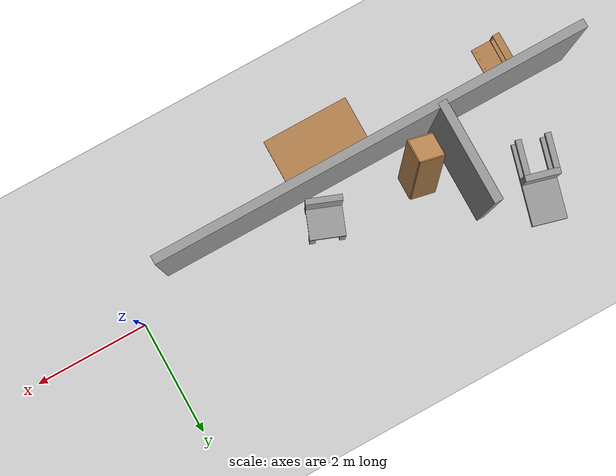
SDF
<sdf version="1.7">
 <world name="default">
  <model name="ground_plane">
   <static>1</static>
   <link name="link">
    <collision name="collision">
     <geometry><plane><normal>0 0 1</normal><size>100 100</size></plane></geometry>
     <surface>
      <contact><collide_bitmask>65535</collide_bitmask></contact>
      <friction><ode><mu>100</mu><mu2>50</mu2></ode></friction>
     </surface>
    </collision>
    <visual name="visual">
     <cast_shadows>0</cast_shadows>
     <geometry><plane><normal>0 0 1</normal><size>100 100</size></plane></geometry>
     <material>
      <script><uri>file://media/materials/scripts/gazebo.material</uri><name>Gazebo/Grey</name></script>
     </material>
    </visual>
   </link>
  </model>
  <model name="demo_clean">
   <link name="Wall_4">
    <pose>-4.47149 -0.608824 0 0 -0 3.14159</pose>
    <visual name="Wall_4_Visual">
     <pose>0 0 1.25 0 -0 0</pose>
     <geometry><box><size>7.5 0.15 2.5</size></box></geometry>
     <material>
      <script><uri>file://media/materials/scripts/gazebo.material</uri><name>Gazebo/Grey</name></script>
      <ambient>1 1 1 1</ambient>
      <shader type="pixel"/>
     </material>
     <meta><layer>0</layer></meta>
    </visual>
    <collision name="Wall_4_Collision">
     <pose>0 0 1.25 0 -0 0</pose>
     <geometry><box><size>7.5 0.15 2.5</size></box></geometry>
     <surface>
      <friction>
       <ode><mu>1</mu><mu2>1</mu2><fdir1>0 0 0</fdir1><slip1>0</slip1><slip2>0</slip2></ode>
       <torsional>
        <coefficient>1</coefficient>
        <patch_radius>0</patch_radius>
        <surface_radius>0</surface_radius>
        <use_patch_radius>1</use_patch_radius>
        <ode><slip>0</slip></ode>
       </torsional>
      </friction>
      <bounce><restitution_coefficient>0</restitution_coefficient><threshold>1e+06</threshold></bounce>
      <contact>
       <collide_without_contact>0</collide_without_contact>
       <collide_without_contact_bitmask>1</collide_without_contact_bitmask>
       <collide_bitmask>1</collide_bitmask>
       <ode>
        <soft_cfm>0</soft_cfm>
        <soft_erp>0.2</soft_erp>
        <kp>1e+13</kp>
        <kd>1</kd>
        <max_vel>0.01</max_vel>
        <min_depth>0</min_depth>
       </ode>
       <bullet>
        <split_impulse>1</split_impulse>
        <split_impulse_penetration_threshold>-0.01</split_impulse_penetration_threshold>
        <soft_cfm>0</soft_cfm>
        <soft_erp>0.2</soft_erp>
        <kp>1e+13</kp>
        <kd>1</kd>
       </bullet>
      </contact>
     </surface>
    </collision>
   </link>
   <link name="Wall_44">
    <pose>-5.71903 0.262602 0 0 0 -1.5708</pose>
    <visual name="Wall_44_Visual">
     <pose>0 0 1.25 0 -0 0</pose>
     <geometry><box><size>1.75 0.15 2.5</size></box></geometry>
     <material>
      <script><uri>file://media/materials/scripts/gazebo.material</uri><name>Gazebo/Grey</name></script>
      <ambient>1 1 1 1</ambient>
      <shader type="pixel"/>
     </material>
     <meta><layer>0</layer></meta>
    </visual>
    <collision name="Wall_44_Collision">
     <pose>0 0 1.25 0 -0 0</pose>
     <geometry><box><size>1.75 0.15 2.5</size></box></geometry>
     <surface>
      <friction>
       <ode><mu>1</mu><mu2>1</mu2><fdir1>0 0 0</fdir1><slip1>0</slip1><slip2>0</slip2></ode>
       <torsional>
        <coefficient>1</coefficient>
        <patch_radius>0</patch_radius>
        <surface_radius>0</surface_radius>
        <use_patch_radius>1</use_patch_radius>
        <ode><slip>0</slip></ode>
       </torsional>
      </friction>
      <bounce><restitution_coefficient>0</restitution_coefficient><threshold>1e+06</threshold></bounce>
      <contact>
       <collide_without_contact>0</collide_without_contact>
       <collide_without_contact_bitmask>1</collide_without_contact_bitmask>
       <collide_bitmask>1</collide_bitmask>
       <ode>
        <soft_cfm>0</soft_cfm>
        <soft_erp>0.2</soft_erp>
        <kp>1e+13</kp>
        <kd>1</kd>
        <max_vel>0.01</max_vel>
        <min_depth>0</min_depth>
       </ode>
       <bullet>
        <split_impulse>1</split_impulse>
        <split_impulse_penetration_threshold>-0.01</split_impulse_penetration_threshold>
        <soft_cfm>0</soft_cfm>
        <soft_erp>0.2</soft_erp>
        <kp>1e+13</kp>
        <kd>1</kd>
       </bullet>
      </contact>
     </surface>
    </collision>
   </link>
   <static>1</static>
  </model>
  <model name="simple_chair_0">
   <link name="link_0_clone">
    <inertial>
     <mass>1</mass>
     <inertia>
      <ixx>0.166667</ixx>
      <ixy>0</ixy>
      <ixz>0</ixz>
      <iyy>0.166667</iyy>
      <iyz>0</iyz>
      <izz>0.166667</izz>
     </inertia>
    </inertial>
    <pose>-0.041667 -0 0.165833 0 -0 0</pose>
    <visual name="visual">
     <geometry><box><size>0.6 0.6 0.11</size></box></geometry>
     <material>
      <lighting>1</lighting>
      <script><uri>file://media/materials/scripts/gazebo.material</uri><name>Gazebo/Grey</name></script>
      <shader type="pixel"><normal_map>__default__</normal_map></shader>
      <ambient>0.3 0.3 0.3 1</ambient>
      <diffuse>0.7 0.7 0.7 1</diffuse>
      <specular>0.01 0.01 0.01 1</specular>
      <emissive>0 0 0 1</emissive>
     </material>
    </visual>
    <collision name="collision">
     <geometry><box><size>0.6 0.6 0.1</size></box></geometry>
     <surface>
      <friction>
       <ode><mu>1</mu><mu2>1</mu2><fdir1>0 0 0</fdir1><slip1>0</slip1><slip2>0</slip2></ode>
       <torsional>
        <coefficient>1</coefficient>
        <patch_radius>0</patch_radius>
        <surface_radius>0</surface_radius>
        <use_patch_radius>1</use_patch_radius>
        <ode><slip>0</slip></ode>
       </torsional>
      </friction>
      <bounce><restitution_coefficient>0</restitution_coefficient><threshold>1e+06</threshold></bounce>
      <contact>
       <collide_without_contact>0</collide_without_contact>
       <collide_without_contact_bitmask>1</collide_without_contact_bitmask>
       <collide_bitmask>1</collide_bitmask>
       <ode>
        <soft_cfm>0</soft_cfm>
        <soft_erp>0.2</soft_erp>
        <kp>1e+13</kp>
        <kd>1</kd>
        <max_vel>0.01</max_vel>
        <min_depth>0</min_depth>
       </ode>
       <bullet>
        <split_impulse>1</split_impulse>
        <split_impulse_penetration_threshold>-0.01</split_impulse_penetration_threshold>
        <soft_cfm>0</soft_cfm>
        <soft_erp>0.2</soft_erp>
        <kp>1e+13</kp>
        <kd>1</kd>
       </bullet>
      </contact>
     </surface>
    </collision>
   </link>
   <link name="link_1_clone">
    <inertial>
     <mass>1</mass>
     <inertia>
      <ixx>0.166667</ixx>
      <ixy>0</ixy>
      <ixz>0</ixz>
      <iyy>0.166667</iyy>
      <iyz>0</iyz>
      <izz>0.166667</izz>
     </inertia>
    </inertial>
    <pose>-0.291667 0.25 -0.184167 0 -0 0</pose>
    <visual name="visual">
     <geometry><box><size>0.1 0.1 0.6</size></box></geometry>
     <material>
      <lighting>1</lighting>
      <script><uri>file://media/materials/scripts/gazebo.material</uri><name>Gazebo/Grey</name></script>
      <shader type="pixel"><normal_map>__default__</normal_map></shader>
      <ambient>0.3 0.3 0.3 1</ambient>
      <diffuse>0.7 0.7 0.7 1</diffuse>
      <specular>0.01 0.01 0.01 1</specular>
      <emissive>0 0 0 1</emissive>
     </material>
    </visual>
    <collision name="collision">
     <geometry><box><size>0.1 0.1 0.6</size></box></geometry>
     <surface>
      <friction>
       <ode><mu>1</mu><mu2>1</mu2><fdir1>0 0 0</fdir1><slip1>0</slip1><slip2>0</slip2></ode>
       <torsional>
        <coefficient>1</coefficient>
        <patch_radius>0</patch_radius>
        <surface_radius>0</surface_radius>
        <use_patch_radius>1</use_patch_radius>
        <ode><slip>0</slip></ode>
       </torsional>
      </friction>
      <bounce><restitution_coefficient>0</restitution_coefficient><threshold>1e+06</threshold></bounce>
      <contact>
       <collide_without_contact>0</collide_without_contact>
       <collide_without_contact_bitmask>1</collide_without_contact_bitmask>
       <collide_bitmask>1</collide_bitmask>
       <ode>
        <soft_cfm>0</soft_cfm>
        <soft_erp>0.2</soft_erp>
        <kp>1e+13</kp>
        <kd>1</kd>
        <max_vel>0.01</max_vel>
        <min_depth>0</min_depth>
       </ode>
       <bullet>
        <split_impulse>1</split_impulse>
        <split_impulse_penetration_threshold>-0.01</split_impulse_penetration_threshold>
        <soft_cfm>0</soft_cfm>
        <soft_erp>0.2</soft_erp>
        <kp>1e+13</kp>
        <kd>1</kd>
       </bullet>
      </contact>
     </surface>
    </collision>
   </link>
   <link name="link_1_clone_0">
    <inertial>
     <mass>1</mass>
     <inertia>
      <ixx>0.166667</ixx>
      <ixy>0</ixy>
      <ixz>0</ixz>
      <iyy>0.166667</iyy>
      <iyz>0</iyz>
      <izz>0.166667</izz>
     </inertia>
    </inertial>
    <pose>0.208333 0.25 -0.184167 0 -0 0</pose>
    <visual name="visual">
     <geometry><box><size>0.1 0.1 0.6</size></box></geometry>
     <material>
      <lighting>1</lighting>
      <script><uri>file://media/materials/scripts/gazebo.material</uri><name>Gazebo/Grey</name></script>
      <shader type="pixel"><normal_map>__default__</normal_map></shader>
      <ambient>0.3 0.3 0.3 1</ambient>
      <diffuse>0.7 0.7 0.7 1</diffuse>
      <specular>0.01 0.01 0.01 1</specular>
      <emissive>0 0 0 1</emissive>
     </material>
    </visual>
    <collision name="collision">
     <geometry><box><size>0.1 0.1 0.6</size></box></geometry>
     <surface>
      <friction>
       <ode><mu>1</mu><mu2>1</mu2><fdir1>0 0 0</fdir1><slip1>0</slip1><slip2>0</slip2></ode>
       <torsional>
        <coefficient>1</coefficient>
        <patch_radius>0</patch_radius>
        <surface_radius>0</surface_radius>
        <use_patch_radius>1</use_patch_radius>
        <ode><slip>0</slip></ode>
       </torsional>
      </friction>
      <bounce><restitution_coefficient>0</restitution_coefficient><threshold>1e+06</threshold></bounce>
      <contact>
       <collide_without_contact>0</collide_without_contact>
       <collide_without_contact_bitmask>1</collide_without_contact_bitmask>
       <collide_bitmask>1</collide_bitmask>
       <ode>
        <soft_cfm>0</soft_cfm>
        <soft_erp>0.2</soft_erp>
        <kp>1e+13</kp>
        <kd>1</kd>
        <max_vel>0.01</max_vel>
        <min_depth>0</min_depth>
       </ode>
       <bullet>
        <split_impulse>1</split_impulse>
        <split_impulse_penetration_threshold>-0.01</split_impulse_penetration_threshold>
        <soft_cfm>0</soft_cfm>
        <soft_erp>0.2</soft_erp>
        <kp>1e+13</kp>
        <kd>1</kd>
       </bullet>
      </contact>
     </surface>
    </collision>
   </link>
   <link name="link_1_clone_1">
    <inertial>
     <mass>1</mass>
     <inertia>
      <ixx>0.166667</ixx>
      <ixy>0</ixy>
      <ixz>0</ixz>
      <iyy>0.166667</iyy>
      <iyz>0</iyz>
      <izz>0.166667</izz>
     </inertia>
    </inertial>
    <pose>0.208333 -0.25 -0.184167 0 -0 0</pose>
    <visual name="visual">
     <geometry><box><size>0.1 0.1 0.6</size></box></geometry>
     <material>
      <lighting>1</lighting>
      <script><uri>file://media/materials/scripts/gazebo.material</uri><name>Gazebo/Grey</name></script>
      <shader type="pixel"><normal_map>__default__</normal_map></shader>
      <ambient>0.3 0.3 0.3 1</ambient>
      <diffuse>0.7 0.7 0.7 1</diffuse>
      <specular>0.01 0.01 0.01 1</specular>
      <emissive>0 0 0 1</emissive>
     </material>
    </visual>
    <collision name="collision">
     <geometry><box><size>0.1 0.1 0.6</size></box></geometry>
     <surface>
      <friction>
       <ode><mu>1</mu><mu2>1</mu2><fdir1>0 0 0</fdir1><slip1>0</slip1><slip2>0</slip2></ode>
       <torsional>
        <coefficient>1</coefficient>
        <patch_radius>0</patch_radius>
        <surface_radius>0</surface_radius>
        <use_patch_radius>1</use_patch_radius>
        <ode><slip>0</slip></ode>
       </torsional>
      </friction>
      <bounce><restitution_coefficient>0</restitution_coefficient><threshold>1e+06</threshold></bounce>
      <contact>
       <collide_without_contact>0</collide_without_contact>
       <collide_without_contact_bitmask>1</collide_without_contact_bitmask>
       <collide_bitmask>1</collide_bitmask>
       <ode>
        <soft_cfm>0</soft_cfm>
        <soft_erp>0.2</soft_erp>
        <kp>1e+13</kp>
        <kd>1</kd>
        <max_vel>0.01</max_vel>
        <min_depth>0</min_depth>
       </ode>
       <bullet>
        <split_impulse>1</split_impulse>
        <split_impulse_penetration_threshold>-0.01</split_impulse_penetration_threshold>
        <soft_cfm>0</soft_cfm>
        <soft_erp>0.2</soft_erp>
        <kp>1e+13</kp>
        <kd>1</kd>
       </bullet>
      </contact>
     </surface>
    </collision>
   </link>
   <link name="link_1_clone_clone">
    <inertial>
     <mass>1</mass>
     <inertia>
      <ixx>0.166667</ixx>
      <ixy>0</ixy>
      <ixz>0</ixz>
      <iyy>0.166667</iyy>
      <iyz>0</iyz>
      <izz>0.166667</izz>
     </inertia>
    </inertial>
    <pose>-0.291667 -0.25 -0.184167 0 -0 0</pose>
    <visual name="visual">
     <geometry><box><size>0.1 0.1 0.6</size></box></geometry>
     <material>
      <lighting>1</lighting>
      <script><uri>file://media/materials/scripts/gazebo.material</uri><name>Gazebo/Grey</name></script>
      <shader type="pixel"><normal_map>__default__</normal_map></shader>
      <ambient>0.3 0.3 0.3 1</ambient>
      <diffuse>0.7 0.7 0.7 1</diffuse>
      <specular>0.01 0.01 0.01 1</specular>
      <emissive>0 0 0 1</emissive>
     </material>
    </visual>
    <collision name="collision">
     <geometry><box><size>0.1 0.1 0.6</size></box></geometry>
     <surface>
      <friction>
       <ode><mu>1</mu><mu2>1</mu2><fdir1>0 0 0</fdir1><slip1>0</slip1><slip2>0</slip2></ode>
       <torsional>
        <coefficient>1</coefficient>
        <patch_radius>0</patch_radius>
        <surface_radius>0</surface_radius>
        <use_patch_radius>1</use_patch_radius>
        <ode><slip>0</slip></ode>
       </torsional>
      </friction>
      <bounce><restitution_coefficient>0</restitution_coefficient><threshold>1e+06</threshold></bounce>
      <contact>
       <collide_without_contact>0</collide_without_contact>
       <collide_without_contact_bitmask>1</collide_without_contact_bitmask>
       <collide_bitmask>1</collide_bitmask>
       <ode>
        <soft_cfm>0</soft_cfm>
        <soft_erp>0.2</soft_erp>
        <kp>1e+13</kp>
        <kd>1</kd>
        <max_vel>0.01</max_vel>
        <min_depth>0</min_depth>
       </ode>
       <bullet>
        <split_impulse>1</split_impulse>
        <split_impulse_penetration_threshold>-0.01</split_impulse_penetration_threshold>
        <soft_cfm>0</soft_cfm>
        <soft_erp>0.2</soft_erp>
        <kp>1e+13</kp>
        <kd>1</kd>
       </bullet>
      </contact>
     </surface>
    </collision>
   </link>
   <link name="link_2_clone">
    <inertial>
     <mass>1</mass>
     <inertia>
      <ixx>0.166667</ixx>
      <ixy>0</ixy>
      <ixz>0</ixz>
      <iyy>0.166667</iyy>
      <iyz>0</iyz>
      <izz>0.166667</izz>
     </inertia>
    </inertial>
    <pose>0.208333 -0 0.570833 0 -0 0</pose>
    <visual name="visual">
     <geometry><box><size>0.1 0.6 0.7</size></box></geometry>
     <material>
      <lighting>1</lighting>
      <script><uri>file://media/materials/scripts/gazebo.material</uri><name>Gazebo/Grey</name></script>
      <shader type="pixel"><normal_map>__default__</normal_map></shader>
      <ambient>0.3 0.3 0.3 1</ambient>
      <diffuse>0.7 0.7 0.7 1</diffuse>
      <specular>0.01 0.01 0.01 1</specular>
      <emissive>0 0 0 1</emissive>
     </material>
    </visual>
    <collision name="collision">
     <geometry><box><size>0.1 0.6 0.7</size></box></geometry>
     <surface>
      <friction>
       <ode><mu>1</mu><mu2>1</mu2><fdir1>0 0 0</fdir1><slip1>0</slip1><slip2>0</slip2></ode>
       <torsional>
        <coefficient>1</coefficient>
        <patch_radius>0</patch_radius>
        <surface_radius>0</surface_radius>
        <use_patch_radius>1</use_patch_radius>
        <ode><slip>0</slip></ode>
       </torsional>
      </friction>
      <bounce><restitution_coefficient>0</restitution_coefficient><threshold>1e+06</threshold></bounce>
      <contact>
       <collide_without_contact>0</collide_without_contact>
       <collide_without_contact_bitmask>1</collide_without_contact_bitmask>
       <collide_bitmask>1</collide_bitmask>
       <ode>
        <soft_cfm>0</soft_cfm>
        <soft_erp>0.2</soft_erp>
        <kp>1e+13</kp>
        <kd>1</kd>
        <max_vel>0.01</max_vel>
        <min_depth>0</min_depth>
       </ode>
       <bullet>
        <split_impulse>1</split_impulse>
        <split_impulse_penetration_threshold>-0.01</split_impulse_penetration_threshold>
        <soft_cfm>0</soft_cfm>
        <soft_erp>0.2</soft_erp>
        <kp>1e+13</kp>
        <kd>1</kd>
       </bullet>
      </contact>
     </surface>
    </collision>
   </link>
   <joint name="link_0_clone_JOINT_0" type="fixed">
    <parent>link_0_clone</parent>
    <child>link_1_clone_clone</child>
    <physics>
     <ode><limit><cfm>0</cfm><erp>0.2</erp></limit><suspension><cfm>0</cfm><erp>0.2</erp></suspension></ode>
    </physics>
   </joint>
   <joint name="link_0_clone_JOINT_1" type="fixed">
    <parent>link_0_clone</parent>
    <child>link_1_clone</child>
    <physics>
     <ode><limit><cfm>0</cfm><erp>0.2</erp></limit><suspension><cfm>0</cfm><erp>0.2</erp></suspension></ode>
    </physics>
   </joint>
   <joint name="link_0_clone_JOINT_2" type="fixed">
    <parent>link_0_clone</parent>
    <child>link_1_clone_1</child>
    <physics>
     <ode><limit><cfm>0</cfm><erp>0.2</erp></limit><suspension><cfm>0</cfm><erp>0.2</erp></suspension></ode>
    </physics>
   </joint>
   <joint name="link_0_clone_JOINT_3" type="fixed">
    <parent>link_0_clone</parent>
    <child>link_2_clone</child>
    <physics>
     <ode><limit><cfm>0</cfm><erp>0.2</erp></limit><suspension><cfm>0</cfm><erp>0.2</erp></suspension></ode>
    </physics>
   </joint>
   <joint name="link_0_clone_JOINT_4" type="fixed">
    <parent>link_0_clone</parent>
    <child>link_1_clone_0</child>
    <physics>
     <ode><limit><cfm>0</cfm><erp>0.2</erp></limit><suspension><cfm>0</cfm><erp>0.2</erp></suspension></ode>
    </physics>
   </joint>
   <static>0</static>
   <pose>-3.42415 -0.075312 0.484167 0 0 -1.93744</pose>
  </model>
  <model name="table_clone">
   <static>1</static>
   <link name="link">
    <collision name="surface">
     <pose>0 0 1 0 -0 0</pose>
     <geometry><box><size>1.5 0.8 0.03</size></box></geometry>
     <surface><friction><ode><mu>0.6</mu><mu2>0.6</mu2></ode></friction></surface>
    </collision>
    <visual name="visual1">
     <pose>0 0 1 0 -0 0</pose>
     <geometry><box><size>1.5 0.8 0.03</size></box></geometry>
     <material>
      <script><uri>file://media/materials/scripts/gazebo.material</uri><name>Gazebo/Wood</name></script>
     </material>
    </visual>
    <collision name="front_left_leg">
     <pose>0.68 0.38 0.5 0 -0 0</pose>
     <geometry><cylinder><radius>0.02</radius><length>1</length></cylinder></geometry>
    </collision>
    <visual name="front_left_leg">
     <pose>0.68 0.38 0.5 0 -0 0</pose>
     <geometry><cylinder><radius>0.02</radius><length>1</length></cylinder></geometry>
     <material>
      <script><uri>file://media/materials/scripts/gazebo.material</uri><name>Gazebo/Grey</name></script>
     </material>
    </visual>
    <collision name="front_right_leg">
     <pose>0.68 -0.38 0.5 0 -0 0</pose>
     <geometry><cylinder><radius>0.02</radius><length>1</length></cylinder></geometry>
    </collision>
    <visual name="front_right_leg">
     <pose>0.68 -0.38 0.5 0 -0 0</pose>
     <geometry><cylinder><radius>0.02</radius><length>1</length></cylinder></geometry>
     <material>
      <script><uri>file://media/materials/scripts/gazebo.material</uri><name>Gazebo/Grey</name></script>
     </material>
    </visual>
    <collision name="back_right_leg">
     <pose>-0.68 -0.38 0.5 0 -0 0</pose>
     <geometry><cylinder><radius>0.02</radius><length>1</length></cylinder></geometry>
    </collision>
    <visual name="back_right_leg">
     <pose>-0.68 -0.38 0.5 0 -0 0</pose>
     <geometry><cylinder><radius>0.02</radius><length>1</length></cylinder></geometry>
     <material>
      <script><uri>file://media/materials/scripts/gazebo.material</uri><name>Gazebo/Grey</name></script>
     </material>
    </visual>
    <collision name="back_left_leg">
     <pose>-0.68 0.38 0.5 0 -0 0</pose>
     <geometry><cylinder><radius>0.02</radius><length>1</length></cylinder></geometry>
    </collision>
    <visual name="back_left_leg">
     <pose>-0.68 0.38 0.5 0 -0 0</pose>
     <geometry><cylinder><radius>0.02</radius><length>1</length></cylinder></geometry>
     <material>
      <script><uri>file://media/materials/scripts/gazebo.material</uri><name>Gazebo/Grey</name></script>
     </material>
    </visual>
   </link>
   <pose>-3.87699 -1.18898 0 0 -0 0</pose>
  </model>
  <model name="cabinet_clone_1_clone_0">
   <static>1</static>
   <link name="cabinet_bottom_plate">
    <inertial>
     <pose>0 0 -1 0 -0 0</pose>
     <inertia><ixx>2.05</ixx><ixy>0</ixy><ixz>0</ixz><iyy>2.05</iyy><iyz>0</iyz><izz>2.05</izz></inertia>
     <mass>25</mass>
    </inertial>
    <collision name="cabinet_bottom_plate_geom">
     <pose>0 0 0.01 0 -0 0</pose>
     <geometry><box><size>0.45 0.45 0.02</size></box></geometry>
    </collision>
    <visual name="cabinet_bottom_plate_geom_visual">
     <pose>0 0 0.01 0 -0 0</pose>
     <geometry><box><size>0.45 0.45 0.02</size></box></geometry>
     <material>
      <script><uri>file://media/materials/scripts/gazebo.material</uri><name>Gazebo/Wood</name></script>
     </material>
    </visual>
    <collision name="cabinet_bottom_plate_geom_cabinet_back_plate">
     <pose>0.235 0 0.51 0 -0 0</pose>
     <geometry><box><size>0.02 0.45 1.02</size></box></geometry>
    </collision>
    <visual name="cabinet_bottom_plate_geom_cabinet_back_plate_visual">
     <pose>0.235 0 0.51 0 -0 0</pose>
     <geometry><box><size>0.02 0.45 1.02</size></box></geometry>
     <material>
      <script><uri>file://media/materials/scripts/gazebo.material</uri><name>Gazebo/Wood</name></script>
     </material>
    </visual>
    <collision name="cabinet_bottom_plate_geom_cabinet_left_plate">
     <pose>0 0.235 0.51 0 -0 0</pose>
     <geometry><box><size>0.45 0.02 1.02</size></box></geometry>
    </collision>
    <visual name="cabinet_bottom_plate_geom_cabinet_left_plate_visual">
     <pose>0 0.235 0.51 0 -0 0</pose>
     <geometry><box><size>0.45 0.02 1.02</size></box></geometry>
     <material>
      <script><uri>file://media/materials/scripts/gazebo.material</uri><name>Gazebo/Wood</name></script>
     </material>
    </visual>
    <collision name="cabinet_bottom_plate_geom_cabinet_middle_plate">
     <pose>0 0 0.51 0 -0 0</pose>
     <geometry><box><size>0.45 0.45 0.02</size></box></geometry>
    </collision>
    <visual name="cabinet_bottom_plate_geom_cabinet_middle_plate_visual">
     <pose>0 0 0.51 0 -0 0</pose>
     <geometry><box><size>0.45 0.45 0.02</size></box></geometry>
     <material>
      <script><uri>file://media/materials/scripts/gazebo.material</uri><name>Gazebo/Wood</name></script>
     </material>
    </visual>
    <collision name="cabinet_bottom_plate_geom_cabinet_right_plate">
     <pose>0 -0.235 0.51 0 -0 0</pose>
     <geometry><box><size>0.45 0.02 1.02</size></box></geometry>
    </collision>
    <visual name="cabinet_bottom_plate_geom_cabinet_right_plate_visual">
     <pose>0 -0.235 0.51 0 -0 0</pose>
     <geometry><box><size>0.45 0.02 1.02</size></box></geometry>
     <material>
      <script><uri>file://media/materials/scripts/gazebo.material</uri><name>Gazebo/Wood</name></script>
     </material>
    </visual>
    <collision name="cabinet_bottom_plate_geom_cabinet_top_plate">
     <pose>0 0 1.01 0 -0 0</pose>
     <geometry><box><size>0.45 0.45 0.02</size></box></geometry>
    </collision>
    <visual name="cabinet_bottom_plate_geom_cabinet_top_plate_visual">
     <pose>0 0 1.01 0 -0 0</pose>
     <geometry><box><size>0.45 0.45 0.02</size></box></geometry>
     <material>
      <script><uri>file://media/materials/scripts/gazebo.material</uri><name>Gazebo/Wood</name></script>
     </material>
    </visual>
   </link>
   <pose>-5.05383 0.13603 0.140645 0.436544 -0.263797 -0.183144</pose>
  </model>
  <model name="simple_chair_0_clone_0_clone">
   <link name="link_0_clone">
    <inertial>
     <mass>1</mass>
     <inertia>
      <ixx>0.166667</ixx>
      <ixy>0</ixy>
      <ixz>0</ixz>
      <iyy>0.166667</iyy>
      <iyz>0</iyz>
      <izz>0.166667</izz>
     </inertia>
    </inertial>
    <pose>-0.041667 -0 0.165833 0 -0 0</pose>
    <visual name="visual">
     <geometry><box><size>0.6 0.6 0.11</size></box></geometry>
     <material>
      <lighting>1</lighting>
      <script><uri>file://media/materials/scripts/gazebo.material</uri><name>Gazebo/Grey</name></script>
      <shader type="pixel"><normal_map>__default__</normal_map></shader>
      <ambient>0.3 0.3 0.3 1</ambient>
      <diffuse>0.7 0.7 0.7 1</diffuse>
      <specular>0.01 0.01 0.01 1</specular>
      <emissive>0 0 0 1</emissive>
     </material>
    </visual>
    <collision name="collision">
     <geometry><box><size>0.6 0.6 0.1</size></box></geometry>
     <surface>
      <friction>
       <ode><mu>1</mu><mu2>1</mu2><fdir1>0 0 0</fdir1><slip1>0</slip1><slip2>0</slip2></ode>
       <torsional>
        <coefficient>1</coefficient>
        <patch_radius>0</patch_radius>
        <surface_radius>0</surface_radius>
        <use_patch_radius>1</use_patch_radius>
        <ode><slip>0</slip></ode>
       </torsional>
      </friction>
      <bounce><restitution_coefficient>0</restitution_coefficient><threshold>1e+06</threshold></bounce>
      <contact>
       <collide_without_contact>0</collide_without_contact>
       <collide_without_contact_bitmask>1</collide_without_contact_bitmask>
       <collide_bitmask>1</collide_bitmask>
       <ode>
        <soft_cfm>0</soft_cfm>
        <soft_erp>0.2</soft_erp>
        <kp>1e+13</kp>
        <kd>1</kd>
        <max_vel>0.01</max_vel>
        <min_depth>0</min_depth>
       </ode>
       <bullet>
        <split_impulse>1</split_impulse>
        <split_impulse_penetration_threshold>-0.01</split_impulse_penetration_threshold>
        <soft_cfm>0</soft_cfm>
        <soft_erp>0.2</soft_erp>
        <kp>1e+13</kp>
        <kd>1</kd>
       </bullet>
      </contact>
     </surface>
    </collision>
   </link>
   <link name="link_1_clone">
    <inertial>
     <mass>1</mass>
     <inertia>
      <ixx>0.166667</ixx>
      <ixy>0</ixy>
      <ixz>0</ixz>
      <iyy>0.166667</iyy>
      <iyz>0</iyz>
      <izz>0.166667</izz>
     </inertia>
    </inertial>
    <pose>-0.291667 0.25 -0.184167 0 -0 0</pose>
    <visual name="visual">
     <geometry><box><size>0.1 0.1 0.6</size></box></geometry>
     <material>
      <lighting>1</lighting>
      <script><uri>file://media/materials/scripts/gazebo.material</uri><name>Gazebo/Grey</name></script>
      <shader type="pixel"><normal_map>__default__</normal_map></shader>
      <ambient>0.3 0.3 0.3 1</ambient>
      <diffuse>0.7 0.7 0.7 1</diffuse>
      <specular>0.01 0.01 0.01 1</specular>
      <emissive>0 0 0 1</emissive>
     </material>
    </visual>
    <collision name="collision">
     <geometry><box><size>0.1 0.1 0.6</size></box></geometry>
     <surface>
      <friction>
       <ode><mu>1</mu><mu2>1</mu2><fdir1>0 0 0</fdir1><slip1>0</slip1><slip2>0</slip2></ode>
       <torsional>
        <coefficient>1</coefficient>
        <patch_radius>0</patch_radius>
        <surface_radius>0</surface_radius>
        <use_patch_radius>1</use_patch_radius>
        <ode><slip>0</slip></ode>
       </torsional>
      </friction>
      <bounce><restitution_coefficient>0</restitution_coefficient><threshold>1e+06</threshold></bounce>
      <contact>
       <collide_without_contact>0</collide_without_contact>
       <collide_without_contact_bitmask>1</collide_without_contact_bitmask>
       <collide_bitmask>1</collide_bitmask>
       <ode>
        <soft_cfm>0</soft_cfm>
        <soft_erp>0.2</soft_erp>
        <kp>1e+13</kp>
        <kd>1</kd>
        <max_vel>0.01</max_vel>
        <min_depth>0</min_depth>
       </ode>
       <bullet>
        <split_impulse>1</split_impulse>
        <split_impulse_penetration_threshold>-0.01</split_impulse_penetration_threshold>
        <soft_cfm>0</soft_cfm>
        <soft_erp>0.2</soft_erp>
        <kp>1e+13</kp>
        <kd>1</kd>
       </bullet>
      </contact>
     </surface>
    </collision>
   </link>
   <link name="link_1_clone_0">
    <inertial>
     <mass>1</mass>
     <inertia>
      <ixx>0.166667</ixx>
      <ixy>0</ixy>
      <ixz>0</ixz>
      <iyy>0.166667</iyy>
      <iyz>0</iyz>
      <izz>0.166667</izz>
     </inertia>
    </inertial>
    <pose>0.208333 0.25 -0.184167 0 -0 0</pose>
    <visual name="visual">
     <geometry><box><size>0.1 0.1 0.6</size></box></geometry>
     <material>
      <lighting>1</lighting>
      <script><uri>file://media/materials/scripts/gazebo.material</uri><name>Gazebo/Grey</name></script>
      <shader type="pixel"><normal_map>__default__</normal_map></shader>
      <ambient>0.3 0.3 0.3 1</ambient>
      <diffuse>0.7 0.7 0.7 1</diffuse>
      <specular>0.01 0.01 0.01 1</specular>
      <emissive>0 0 0 1</emissive>
     </material>
    </visual>
    <collision name="collision">
     <geometry><box><size>0.1 0.1 0.6</size></box></geometry>
     <surface>
      <friction>
       <ode><mu>1</mu><mu2>1</mu2><fdir1>0 0 0</fdir1><slip1>0</slip1><slip2>0</slip2></ode>
       <torsional>
        <coefficient>1</coefficient>
        <patch_radius>0</patch_radius>
        <surface_radius>0</surface_radius>
        <use_patch_radius>1</use_patch_radius>
        <ode><slip>0</slip></ode>
       </torsional>
      </friction>
      <bounce><restitution_coefficient>0</restitution_coefficient><threshold>1e+06</threshold></bounce>
      <contact>
       <collide_without_contact>0</collide_without_contact>
       <collide_without_contact_bitmask>1</collide_without_contact_bitmask>
       <collide_bitmask>1</collide_bitmask>
       <ode>
        <soft_cfm>0</soft_cfm>
        <soft_erp>0.2</soft_erp>
        <kp>1e+13</kp>
        <kd>1</kd>
        <max_vel>0.01</max_vel>
        <min_depth>0</min_depth>
       </ode>
       <bullet>
        <split_impulse>1</split_impulse>
        <split_impulse_penetration_threshold>-0.01</split_impulse_penetration_threshold>
        <soft_cfm>0</soft_cfm>
        <soft_erp>0.2</soft_erp>
        <kp>1e+13</kp>
        <kd>1</kd>
       </bullet>
      </contact>
     </surface>
    </collision>
   </link>
   <link name="link_1_clone_1">
    <inertial>
     <mass>1</mass>
     <inertia>
      <ixx>0.166667</ixx>
      <ixy>0</ixy>
      <ixz>0</ixz>
      <iyy>0.166667</iyy>
      <iyz>0</iyz>
      <izz>0.166667</izz>
     </inertia>
    </inertial>
    <pose>0.208333 -0.25 -0.184167 0 -0 0</pose>
    <visual name="visual">
     <geometry><box><size>0.1 0.1 0.6</size></box></geometry>
     <material>
      <lighting>1</lighting>
      <script><uri>file://media/materials/scripts/gazebo.material</uri><name>Gazebo/Grey</name></script>
      <shader type="pixel"><normal_map>__default__</normal_map></shader>
      <ambient>0.3 0.3 0.3 1</ambient>
      <diffuse>0.7 0.7 0.7 1</diffuse>
      <specular>0.01 0.01 0.01 1</specular>
      <emissive>0 0 0 1</emissive>
     </material>
    </visual>
    <collision name="collision">
     <geometry><box><size>0.1 0.1 0.6</size></box></geometry>
     <surface>
      <friction>
       <ode><mu>1</mu><mu2>1</mu2><fdir1>0 0 0</fdir1><slip1>0</slip1><slip2>0</slip2></ode>
       <torsional>
        <coefficient>1</coefficient>
        <patch_radius>0</patch_radius>
        <surface_radius>0</surface_radius>
        <use_patch_radius>1</use_patch_radius>
        <ode><slip>0</slip></ode>
       </torsional>
      </friction>
      <bounce><restitution_coefficient>0</restitution_coefficient><threshold>1e+06</threshold></bounce>
      <contact>
       <collide_without_contact>0</collide_without_contact>
       <collide_without_contact_bitmask>1</collide_without_contact_bitmask>
       <collide_bitmask>1</collide_bitmask>
       <ode>
        <soft_cfm>0</soft_cfm>
        <soft_erp>0.2</soft_erp>
        <kp>1e+13</kp>
        <kd>1</kd>
        <max_vel>0.01</max_vel>
        <min_depth>0</min_depth>
       </ode>
       <bullet>
        <split_impulse>1</split_impulse>
        <split_impulse_penetration_threshold>-0.01</split_impulse_penetration_threshold>
        <soft_cfm>0</soft_cfm>
        <soft_erp>0.2</soft_erp>
        <kp>1e+13</kp>
        <kd>1</kd>
       </bullet>
      </contact>
     </surface>
    </collision>
   </link>
   <link name="link_1_clone_clone">
    <inertial>
     <mass>1</mass>
     <inertia>
      <ixx>0.166667</ixx>
      <ixy>0</ixy>
      <ixz>0</ixz>
      <iyy>0.166667</iyy>
      <iyz>0</iyz>
      <izz>0.166667</izz>
     </inertia>
    </inertial>
    <pose>-0.291667 -0.25 -0.184167 0 -0 0</pose>
    <visual name="visual">
     <geometry><box><size>0.1 0.1 0.6</size></box></geometry>
     <material>
      <lighting>1</lighting>
      <script><uri>file://media/materials/scripts/gazebo.material</uri><name>Gazebo/Grey</name></script>
      <shader type="pixel"><normal_map>__default__</normal_map></shader>
      <ambient>0.3 0.3 0.3 1</ambient>
      <diffuse>0.7 0.7 0.7 1</diffuse>
      <specular>0.01 0.01 0.01 1</specular>
      <emissive>0 0 0 1</emissive>
     </material>
    </visual>
    <collision name="collision">
     <geometry><box><size>0.1 0.1 0.6</size></box></geometry>
     <surface>
      <friction>
       <ode><mu>1</mu><mu2>1</mu2><fdir1>0 0 0</fdir1><slip1>0</slip1><slip2>0</slip2></ode>
       <torsional>
        <coefficient>1</coefficient>
        <patch_radius>0</patch_radius>
        <surface_radius>0</surface_radius>
        <use_patch_radius>1</use_patch_radius>
        <ode><slip>0</slip></ode>
       </torsional>
      </friction>
      <bounce><restitution_coefficient>0</restitution_coefficient><threshold>1e+06</threshold></bounce>
      <contact>
       <collide_without_contact>0</collide_without_contact>
       <collide_without_contact_bitmask>1</collide_without_contact_bitmask>
       <collide_bitmask>1</collide_bitmask>
       <ode>
        <soft_cfm>0</soft_cfm>
        <soft_erp>0.2</soft_erp>
        <kp>1e+13</kp>
        <kd>1</kd>
        <max_vel>0.01</max_vel>
        <min_depth>0</min_depth>
       </ode>
       <bullet>
        <split_impulse>1</split_impulse>
        <split_impulse_penetration_threshold>-0.01</split_impulse_penetration_threshold>
        <soft_cfm>0</soft_cfm>
        <soft_erp>0.2</soft_erp>
        <kp>1e+13</kp>
        <kd>1</kd>
       </bullet>
      </contact>
     </surface>
    </collision>
   </link>
   <link name="link_2_clone">
    <inertial>
     <mass>1</mass>
     <inertia>
      <ixx>0.166667</ixx>
      <ixy>0</ixy>
      <ixz>0</ixz>
      <iyy>0.166667</iyy>
      <iyz>0</iyz>
      <izz>0.166667</izz>
     </inertia>
    </inertial>
    <pose>0.208333 -0 0.570833 0 -0 0</pose>
    <visual name="visual">
     <geometry><box><size>0.1 0.6 0.7</size></box></geometry>
     <material>
      <lighting>1</lighting>
      <script><uri>file://media/materials/scripts/gazebo.material</uri><name>Gazebo/Grey</name></script>
      <shader type="pixel"><normal_map>__default__</normal_map></shader>
      <ambient>0.3 0.3 0.3 1</ambient>
      <diffuse>0.7 0.7 0.7 1</diffuse>
      <specular>0.01 0.01 0.01 1</specular>
      <emissive>0 0 0 1</emissive>
     </material>
    </visual>
    <collision name="collision">
     <geometry><box><size>0.1 0.6 0.7</size></box></geometry>
     <surface>
      <friction>
       <ode><mu>1</mu><mu2>1</mu2><fdir1>0 0 0</fdir1><slip1>0</slip1><slip2>0</slip2></ode>
       <torsional>
        <coefficient>1</coefficient>
        <patch_radius>0</patch_radius>
        <surface_radius>0</surface_radius>
        <use_patch_radius>1</use_patch_radius>
        <ode><slip>0</slip></ode>
       </torsional>
      </friction>
      <bounce><restitution_coefficient>0</restitution_coefficient><threshold>1e+06</threshold></bounce>
      <contact>
       <collide_without_contact>0</collide_without_contact>
       <collide_without_contact_bitmask>1</collide_without_contact_bitmask>
       <collide_bitmask>1</collide_bitmask>
       <ode>
        <soft_cfm>0</soft_cfm>
        <soft_erp>0.2</soft_erp>
        <kp>1e+13</kp>
        <kd>1</kd>
        <max_vel>0.01</max_vel>
        <min_depth>0</min_depth>
       </ode>
       <bullet>
        <split_impulse>1</split_impulse>
        <split_impulse_penetration_threshold>-0.01</split_impulse_penetration_threshold>
        <soft_cfm>0</soft_cfm>
        <soft_erp>0.2</soft_erp>
        <kp>1e+13</kp>
        <kd>1</kd>
       </bullet>
      </contact>
     </surface>
    </collision>
   </link>
   <joint name="link_0_clone_JOINT_0" type="fixed">
    <parent>link_0_clone</parent>
    <child>link_1_clone_clone</child>
    <physics>
     <ode><limit><cfm>0</cfm><erp>0.2</erp></limit><suspension><cfm>0</cfm><erp>0.2</erp></suspension></ode>
    </physics>
   </joint>
   <joint name="link_0_clone_JOINT_1" type="fixed">
    <parent>link_0_clone</parent>
    <child>link_1_clone</child>
    <physics>
     <ode><limit><cfm>0</cfm><erp>0.2</erp></limit><suspension><cfm>0</cfm><erp>0.2</erp></suspension></ode>
    </physics>
   </joint>
   <joint name="link_0_clone_JOINT_2" type="fixed">
    <parent>link_0_clone</parent>
    <child>link_1_clone_1</child>
    <physics>
     <ode><limit><cfm>0</cfm><erp>0.2</erp></limit><suspension><cfm>0</cfm><erp>0.2</erp></suspension></ode>
    </physics>
   </joint>
   <joint name="link_0_clone_JOINT_3" type="fixed">
    <parent>link_0_clone</parent>
    <child>link_2_clone</child>
    <physics>
     <ode><limit><cfm>0</cfm><erp>0.2</erp></limit><suspension><cfm>0</cfm><erp>0.2</erp></suspension></ode>
    </physics>
   </joint>
   <joint name="link_0_clone_JOINT_4" type="fixed">
    <parent>link_0_clone</parent>
    <child>link_1_clone_0</child>
    <physics>
     <ode><limit><cfm>0</cfm><erp>0.2</erp></limit><suspension><cfm>0</cfm><erp>0.2</erp></suspension></ode>
    </physics>
   </joint>
   <static>0</static>
   <pose>-6.92105 0.861006 0.258333 0.631973 1.57079 1.94075</pose>
  </model>
  <model name="wooden_case_0">
   <link name="base">
    <pose>0 0 0.024 0 -0 0</pose>
    <inertial>
     <pose>-0.022184 0 0.171592 0 -0 0</pose>
     <mass>3.96264</mass>
     <inertia>
      <ixx>0.213536</ixx>
      <ixy>0</ixy>
      <ixz>0.000779377</ixz>
      <iyy>0.0708943</iyy>
      <iyz>0</iyz>
      <izz>0.154604</izz>
     </inertia>
    </inertial>
    <collision name="collision_back">
     <pose>-0.053975 0 0.1778 0 -0 0</pose>
     <geometry><box><size>0.01905 0.5461 0.3175</size></box></geometry>
     <surface>
      <contact>
       <poissons_ratio>0.347</poissons_ratio>
       <elastic_modulus>8.8e+09</elastic_modulus>
       <ode><kp>100000</kp><kd>100</kd><max_vel>100</max_vel><min_depth>0.001</min_depth></ode>
      </contact>
      <friction>
       <torsional>
        <coefficient>1</coefficient>
        <use_patch_radius>0</use_patch_radius>
        <surface_radius>0.01</surface_radius>
       </torsional>
      </friction>
     </surface>
    </collision>
    <visual name="visual_back">
     <pose>-0.053975 0 0.1778 0 -0 0</pose>
     <geometry><box><size>0.01905 0.5461 0.3175</size></box></geometry>
     <material>
      <script><uri>file://media/materials/scripts/gazebo.material</uri><name>Gazebo/Wood</name></script>
     </material>
    </visual>
    <collision name="collision_bottom">
     <pose>0 0 0.009525 0 -0 0</pose>
     <geometry><box><size>0.127 0.5842 0.01905</size></box></geometry>
     <surface>
      <contact>
       <poissons_ratio>0.347</poissons_ratio>
       <elastic_modulus>8.8e+09</elastic_modulus>
       <ode><kp>100000</kp><kd>100</kd><max_vel>100</max_vel><min_depth>0.001</min_depth></ode>
      </contact>
      <friction>
       <torsional>
        <coefficient>1</coefficient>
        <use_patch_radius>0</use_patch_radius>
        <surface_radius>0.01</surface_radius>
       </torsional>
      </friction>
     </surface>
    </collision>
    <visual name="visual_bottom">
     <pose>0 0 0.009525 0 -0 0</pose>
     <geometry><box><size>0.127 0.5842 0.01905</size></box></geometry>
     <material>
      <script><uri>file://media/materials/scripts/gazebo.material</uri><name>Gazebo/Wood</name></script>
     </material>
    </visual>
    <collision name="collision_top">
     <pose>0 0 0.346075 0 -0 0</pose>
     <geometry><box><size>0.127 0.5842 0.01905</size></box></geometry>
     <surface>
      <contact>
       <poissons_ratio>0.347</poissons_ratio>
       <elastic_modulus>8.8e+09</elastic_modulus>
       <ode><kp>100000</kp><kd>100</kd><max_vel>100</max_vel><min_depth>0.001</min_depth></ode>
      </contact>
      <friction>
       <torsional>
        <coefficient>1</coefficient>
        <use_patch_radius>0</use_patch_radius>
        <surface_radius>0.01</surface_radius>
       </torsional>
      </friction>
     </surface>
    </collision>
    <visual name="visual_top">
     <pose>0 0 0.346075 0 -0 0</pose>
     <geometry><box><size>0.127 0.5842 0.01905</size></box></geometry>
     <material>
      <script><uri>file://media/materials/scripts/gazebo.material</uri><name>Gazebo/Wood</name></script>
     </material>
    </visual>
    <collision name="collision_left">
     <pose>0 -0.282575 0.1778 0 -0 0</pose>
     <geometry><box><size>0.127 0.01905 0.3175</size></box></geometry>
     <surface>
      <contact>
       <poissons_ratio>0.347</poissons_ratio>
       <elastic_modulus>8.8e+09</elastic_modulus>
       <ode><kp>100000</kp><kd>100</kd><max_vel>100</max_vel><min_depth>0.001</min_depth></ode>
      </contact>
      <friction>
       <torsional>
        <coefficient>1</coefficient>
        <use_patch_radius>0</use_patch_radius>
        <surface_radius>0.01</surface_radius>
       </torsional>
      </friction>
     </surface>
    </collision>
    <visual name="visual_left">
     <pose>0 -0.282575 0.1778 0 -0 0</pose>
     <geometry><box><size>0.127 0.01905 0.3175</size></box></geometry>
     <material>
      <script><uri>file://media/materials/scripts/gazebo.material</uri><name>Gazebo/Wood</name></script>
     </material>
    </visual>
    <collision name="collision_right">
     <pose>0 0.282575 0.1778 0 -0 0</pose>
     <geometry><box><size>0.127 0.01905 0.3175</size></box></geometry>
     <surface>
      <contact>
       <poissons_ratio>0.347</poissons_ratio>
       <elastic_modulus>8.8e+09</elastic_modulus>
       <ode><kp>100000</kp><kd>100</kd><max_vel>100</max_vel><min_depth>0.001</min_depth></ode>
      </contact>
      <friction>
       <torsional>
        <coefficient>1</coefficient>
        <use_patch_radius>0</use_patch_radius>
        <surface_radius>0.01</surface_radius>
       </torsional>
      </friction>
     </surface>
    </collision>
    <visual name="visual_right">
     <pose>0 0.282575 0.1778 0 -0 0</pose>
     <geometry><box><size>0.127 0.01905 0.3175</size></box></geometry>
     <material>
      <script><uri>file://media/materials/scripts/gazebo.material</uri><name>Gazebo/Wood</name></script>
     </material>
    </visual>
    <collision name="collision_block_left">
     <pose>0.0095 -0.2151 -0.012 0 -0 0</pose>
     <geometry><box><size>0.108 0.05 0.024</size></box></geometry>
     <surface>
      <contact>
       <poissons_ratio>0.347</poissons_ratio>
       <elastic_modulus>8.8e+09</elastic_modulus>
       <ode><kp>100000</kp><kd>100</kd><max_vel>100</max_vel><min_depth>0.001</min_depth></ode>
      </contact>
      <friction>
       <torsional>
        <coefficient>1</coefficient>
        <use_patch_radius>0</use_patch_radius>
        <surface_radius>0.01</surface_radius>
       </torsional>
      </friction>
     </surface>
    </collision>
    <visual name="visual_block_left">
     <pose>0.0095 -0.2151 -0.012 0 -0 0</pose>
     <geometry><box><size>0.108 0.05 0.024</size></box></geometry>
     <material>
      <script><uri>file://media/materials/scripts/gazebo.material</uri><name>Gazebo/Wood</name></script>
     </material>
    </visual>
    <collision name="collision_block_right">
     <pose>0.0095 0.2151 -0.012 0 -0 0</pose>
     <geometry><box><size>0.108 0.05 0.024</size></box></geometry>
     <surface>
      <contact>
       <poissons_ratio>0.347</poissons_ratio>
       <elastic_modulus>8.8e+09</elastic_modulus>
       <ode><kp>100000</kp><kd>100</kd><max_vel>100</max_vel><min_depth>0.001</min_depth></ode>
      </contact>
      <friction>
       <torsional>
        <coefficient>1</coefficient>
        <use_patch_radius>0</use_patch_radius>
        <surface_radius>0.01</surface_radius>
       </torsional>
      </friction>
     </surface>
    </collision>
    <visual name="visual_block_right">
     <pose>0.0095 0.2151 -0.012 0 -0 0</pose>
     <geometry><box><size>0.108 0.05 0.024</size></box></geometry>
     <material>
      <script><uri>file://media/materials/scripts/gazebo.material</uri><name>Gazebo/Wood</name></script>
     </material>
    </visual>
   </link>
   <link name="lid">
    <pose>0.243775 0 0.009525 0 -0 0</pose>
    <inertial>
     <mass>1.97874</mass>
     <inertia>
      <ixx>0.0563367</ixx>
      <ixy>0</ixy>
      <ixz>0</ixz>
      <iyy>0.020911</iyy>
      <iyz>0</iyz>
      <izz>0.0771281</izz>
     </inertia>
    </inertial>
    <collision name="collision">
     <geometry><box><size>0.3556 0.5842 0.01905</size></box></geometry>
     <surface>
      <contact>
       <poissons_ratio>0.347</poissons_ratio>
       <elastic_modulus>8.8e+09</elastic_modulus>
       <ode><kp>100000</kp><kd>100</kd><max_vel>100</max_vel><min_depth>0.001</min_depth></ode>
      </contact>
      <friction>
       <torsional>
        <coefficient>1</coefficient>
        <use_patch_radius>0</use_patch_radius>
        <surface_radius>0.01</surface_radius>
       </torsional>
      </friction>
     </surface>
    </collision>
    <visual name="visual">
     <geometry><box><size>0.3556 0.5842 0.01905</size></box></geometry>
     <material>
      <script><uri>file://media/materials/scripts/gazebo.material</uri><name>Gazebo/Wood</name></script>
     </material>
    </visual>
    <visual name="tee_nut_1">
     <pose>0.122 -0.216 0 0 -0 0</pose>
     <geometry><cylinder><radius>0.00635</radius><length>0.0192405</length></cylinder></geometry>
     <material>
      <script><uri>file://media/materials/scripts/gazebo.material</uri><name>Gazebo/Grey</name></script>
     </material>
    </visual>
    <visual name="tee_nut_2">
     <pose>0.122 -0.088 0 0 -0 0</pose>
     <geometry><cylinder><radius>0.00635</radius><length>0.0192405</length></cylinder></geometry>
     <material>
      <script><uri>file://media/materials/scripts/gazebo.material</uri><name>Gazebo/Grey</name></script>
     </material>
    </visual>
    <visual name="tee_nut_3">
     <pose>0.122 0.088 0 0 -0 0</pose>
     <geometry><cylinder><radius>0.00635</radius><length>0.0192405</length></cylinder></geometry>
     <material>
      <script><uri>file://media/materials/scripts/gazebo.material</uri><name>Gazebo/Grey</name></script>
     </material>
    </visual>
    <visual name="tee_nut_4">
     <pose>0.122 0.216 0 0 -0 0</pose>
     <geometry><cylinder><radius>0.00635</radius><length>0.0192405</length></cylinder></geometry>
     <material>
      <script><uri>file://media/materials/scripts/gazebo.material</uri><name>Gazebo/Grey</name></script>
     </material>
    </visual>
   </link>
   <joint name="lid_hinge" type="revolute">
    <pose>-0.1778 0 0.01905 0 -0 0</pose>
    <parent>base</parent>
    <child>lid</child>
    <axis>
     <xyz>0 1 0</xyz>
     <limit><upper>0.523599</upper><lower>-1.5708</lower></limit>
     <dynamics><spring_reference>0</spring_reference><spring_stiffness>0</spring_stiffness></dynamics>
    </axis>
   </joint>
   <pose>-7.39367 -1.10957 -0.001057 0 -0.000437 0</pose>
  </model>
 </world>
</sdf>
